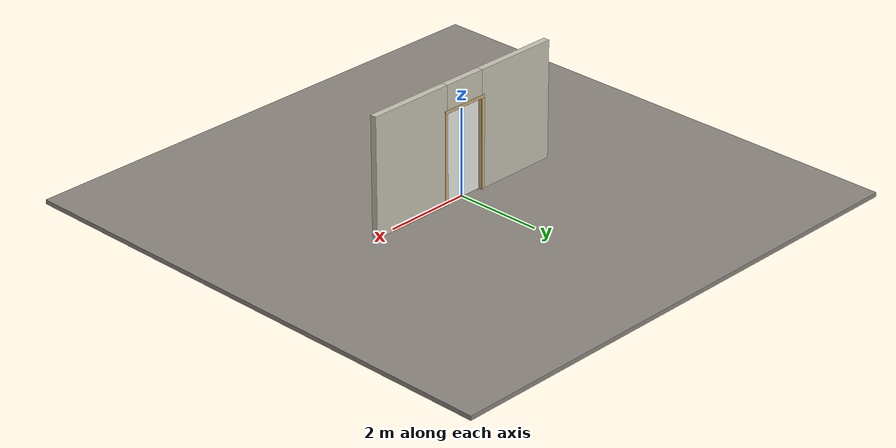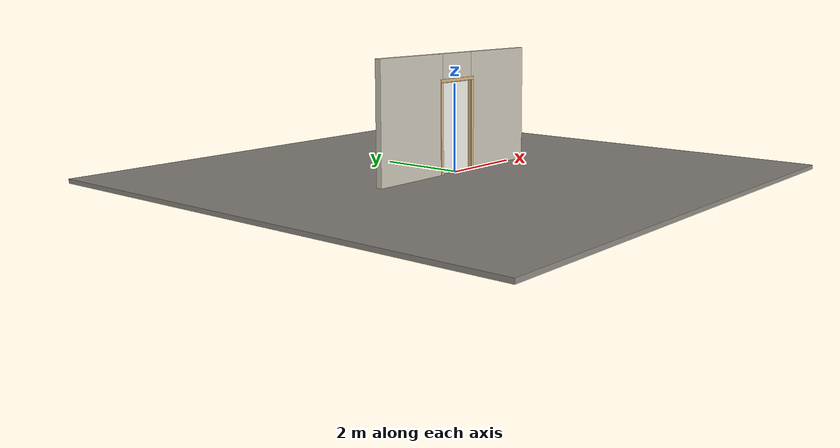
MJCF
<?xml version="1.0" ?>
<mujoco model="db0170_saloon_full">
  <compiler angle="radian" meshdir="../../hardware" texturedir="../../textures" autolimits="true" inertiafromgeom="false"/>
  <option timestep="0.002" integrator="implicitfast" cone="elliptic" impratio="10" noslip_iterations="3">
    <flag multiccd="enable"/>
  </option>
  <size memory="16M"/>
  <default>
    <geom condim="4" solref="0.005 1" solimp="0.95 0.99 0.001"/>
    <joint solreflimit="0.005 1" solimplimit="0.95 0.99 0.001"/>
    <tendon solreflimit="0.005 1"/>
    <equality solref="0.002 1"/>
  </default>
  <visual>
    <headlight ambient="0.4 0.4 0.4" diffuse="0.7 0.7 0.7" specular="0.2 0.2 0.2"/>
    <quality shadowsize="4096"/>
    <map znear="0.01" zfar="60"/>
  </visual>
  <asset>
    <material name="mat_floor" rgba="0.55 0.53 0.5 1" specular="0.2" shininess="0.15" reflectance="0"/>
    <material name="mat_wall" rgba="0.78 0.76 0.7 1" specular="0.2" shininess="0.1" reflectance="0"/>
    <material name="mat_frame" rgba="0.82 0.7 0.5 1" specular="0.2" shininess="0.45" reflectance="0"/>
    <material name="mat_leaf_a" rgba="0.93 0.93 0.91 1" specular="0.2" shininess="0.32" reflectance="0"/>
    <material name="mat_leaf_a_louver" rgba="0.79 0.79 0.773 1" specular="0.2" shininess="0.4" reflectance="0"/>
    <material name="mat_hinge" rgba="0.65 0.66 0.68 1" specular="0.74" shininess="0.5" reflectance="0.36"/>
    <material name="mat_leaf_b" rgba="0.93 0.93 0.91 1" specular="0.2" shininess="0.32" reflectance="0"/>
    <material name="mat_leaf_b_louver" rgba="0.79 0.79 0.773 1" specular="0.2" shininess="0.4" reflectance="0"/>
    <texture name="skybox" type="skybox" builtin="gradient" rgb1="0.6 0.7 0.85" rgb2="0.9 0.92 0.95" width="256" height="256"/>
  </asset>
  <worldbody>
    <light name="sun" pos="1.5 -2.5 4" dir="-0.3 0.5 -0.8" directional="true" diffuse="0.8 0.8 0.8" specular="0.3 0.3 0.3" castshadow="true"/>
    <light name="fill" pos="-1.5 2.5 3" dir="0.3 -0.5 -0.7" directional="true" diffuse="0.35 0.35 0.4" castshadow="false"/>
    <camera name="robot_view" pos="0 -2.554375 1.744225" xyaxes="1 0 0 0 0.26963 0.962964" fovy="52"/>
    <camera name="far_view" pos="0 2.554375 1.744225" xyaxes="-1 0 0 0 -0.26963 0.962964" fovy="52"/>
    <camera name="iso" pos="1.941325 -2.145675 2.152925" xyaxes="0.741536 0.670913 0 -0.242917 0.268487 0.932151" fovy="46"/>
    <camera name="detail_handle" pos="0.48 -0.8 1.28" xyaxes="0.97561 0.219512 0 -0.070934 0.315262 0.94635" fovy="38"/>
    <geom name="floor" type="box" size="6 6 0.05" pos="0 0 -0.05" material="mat_floor" group="0" contype="1" conaffinity="1" friction="0.8 0.005 0.0001" density="2400"/>
    <geom name="wall_left" type="box" size="0.9985 0.0725 1.35" pos="-1.5015 0 1.35" material="mat_wall" group="0" contype="1" conaffinity="1" friction="0.6 0.005 0.0001" density="800"/>
    <geom name="wall_right" type="box" size="0.9985 0.0725 1.35" pos="1.5015 0 1.35" material="mat_wall" group="0" contype="1" conaffinity="1" friction="0.6 0.005 0.0001" density="800"/>
    <geom name="wall_header" type="box" size="0.503 0.0725 0.3115" pos="0 0 2.3885" material="mat_wall" group="0" contype="1" conaffinity="1" friction="0.6 0.005 0.0001" density="800"/>
    <geom name="jamb_hinge" type="box" size="0.0095 0.0725 1.029" pos="-0.4935 0 1.029" material="mat_frame" group="0" contype="1" conaffinity="1" friction="0.6 0.005 0.0001" density="400"/>
    <geom name="jamb_strike" type="box" size="0.0095 0.0725 1.029" pos="0.4935 0 1.029" material="mat_frame" group="0" contype="1" conaffinity="1" friction="0.6 0.005 0.0001" density="400"/>
    <geom name="stud_strike" type="box" size="0.015 0.0725 1.029" pos="0.518 0 1.029" material="mat_wall" group="0" contype="1" conaffinity="1" friction="0.6 0.005 0.0001" density="500"/>
    <geom name="jamb_head" type="box" size="0.518 0.0725 0.0095" pos="0.015 0 2.0675" material="mat_frame" group="0" contype="1" conaffinity="1" friction="0.6 0.005 0.0001" density="400"/>
    <geom name="head_stud" type="box" size="0.518 0.0725 0.015" pos="0.015 0 2.092" material="mat_wall" group="0" contype="1" conaffinity="1" friction="0.6 0.005 0.0001" density="500"/>
    <geom name="casing_l_n" type="box" size="0.035 0.008 1.0385" pos="-0.533 -0.0805 1.029" material="mat_frame" group="2" contype="0" conaffinity="0" density="400"/>
    <geom name="casing_r_n" type="box" size="0.035 0.008 1.0385" pos="0.533 -0.0805 1.029" material="mat_frame" group="2" contype="0" conaffinity="0" density="400"/>
    <geom name="casing_h_n" type="box" size="0.568 0.008 0.035" pos="0 -0.0805 2.107" material="mat_frame" group="2" contype="0" conaffinity="0" density="400"/>
    <geom name="casing_l_p" type="box" size="0.035 0.008 1.0385" pos="-0.533 0.0805 1.029" material="mat_frame" group="2" contype="0" conaffinity="0" density="400"/>
    <geom name="casing_r_p" type="box" size="0.035 0.008 1.0385" pos="0.533 0.0805 1.029" material="mat_frame" group="2" contype="0" conaffinity="0" density="400"/>
    <geom name="casing_h_p" type="box" size="0.568 0.008 0.035" pos="0 0.0805 2.107" material="mat_frame" group="2" contype="0" conaffinity="0" density="400"/>
    <geom name="pivot_bottom_socket" type="box" size="0.035 0.035 0.0115" pos="-0.456 0 0.0015" material="mat_hinge" group="1" contype="0" conaffinity="0" density="7850"/>
    <geom name="pivot_top_bracket" type="box" size="0.035 0.035 0.0025" pos="-0.456 0 2.0555" material="mat_hinge" group="1" contype="0" conaffinity="0" density="7850"/>
    <geom name="pivot_bottom_socket_2" type="box" size="0.035 0.035 0.0115" pos="0.456 0 0.0015" material="mat_hinge" group="1" contype="0" conaffinity="0" density="7850"/>
    <geom name="pivot_top_bracket_2" type="box" size="0.035 0.035 0.0025" pos="0.456 0 2.0555" material="mat_hinge" group="1" contype="0" conaffinity="0" density="7850"/>
    <site name="approach_point" pos="0 -1.5 0" quat="1 0 0 0" size="0.05" rgba="0.2 0.9 0.2 0.5" group="4"/>
    <site name="goal_point" pos="0 1.5 0" quat="1 0 0 0" size="0.05" rgba="0.2 0.9 0.2 0.5" group="4"/>
    <site name="door_plane_center" pos="0 0 1.029" quat="1 0 0 0" size="0.02" rgba="0.2 0.9 0.2 0.5" group="4"/>
    <body name="leaf_a" pos="-0.484 0 0">
      <inertial pos="0.25105 0 1.030009" mass="9.11768" quat="0.500001 -0.500001 -0.499999 -0.499999" diaginertia="0.157938073 3.187363326 3.342377517"/>
      <joint name="leaf_a_hinge" type="hinge" axis="0 0 1" pos="0.028 0 0" limited="true" range="-1.570796 1.570796" damping="0.765034" frictionloss="0.209264" stiffness="4" springref="0" armature="0.02"/>
      <geom name="leaf_a_slab" type="box" size="0.225 0.022 1.015" pos="0.253 0 1.03" material="mat_leaf_a" group="0" contype="1" conaffinity="1" friction="0.35 0.005 0.0001" density="1"/>
      <geom name="leaf_a_louver_0" type="box" size="0.135 0.002 0.02633" pos="0.253 0 0.263376" quat="0.953717 0.300706 0 0" material="mat_leaf_a_louver" group="1" contype="0" conaffinity="0" density="1"/>
      <geom name="leaf_a_louver_1" type="box" size="0.135 0.002 0.02633" pos="0.253 0 0.313529" quat="0.953717 0.300706 0 0" material="mat_leaf_a_louver" group="1" contype="0" conaffinity="0" density="1"/>
      <geom name="leaf_a_louver_2" type="box" size="0.135 0.002 0.02633" pos="0.253 0 0.363682" quat="0.953717 0.300706 0 0" material="mat_leaf_a_louver" group="1" contype="0" conaffinity="0" density="1"/>
      <geom name="leaf_a_louver_3" type="box" size="0.135 0.002 0.02633" pos="0.253 0 0.413835" quat="0.953717 0.300706 0 0" material="mat_leaf_a_louver" group="1" contype="0" conaffinity="0" density="1"/>
      <geom name="leaf_a_louver_4" type="box" size="0.135 0.002 0.02633" pos="0.253 0 0.463988" quat="0.953717 0.300706 0 0" material="mat_leaf_a_louver" group="1" contype="0" conaffinity="0" density="1"/>
      <geom name="leaf_a_louver_5" type="box" size="0.135 0.002 0.02633" pos="0.253 0 0.514141" quat="0.953717 0.300706 0 0" material="mat_leaf_a_louver" group="1" contype="0" conaffinity="0" density="1"/>
      <geom name="leaf_a_louver_6" type="box" size="0.135 0.002 0.02633" pos="0.253 0 0.564294" quat="0.953717 0.300706 0 0" material="mat_leaf_a_louver" group="1" contype="0" conaffinity="0" density="1"/>
      <geom name="leaf_a_louver_7" type="box" size="0.135 0.002 0.02633" pos="0.253 0 0.614447" quat="0.953717 0.300706 0 0" material="mat_leaf_a_louver" group="1" contype="0" conaffinity="0" density="1"/>
      <geom name="leaf_a_louver_8" type="box" size="0.135 0.002 0.02633" pos="0.253 0 0.6646" quat="0.953717 0.300706 0 0" material="mat_leaf_a_louver" group="1" contype="0" conaffinity="0" density="1"/>
      <geom name="leaf_a_louver_9" type="box" size="0.135 0.002 0.02633" pos="0.253 0 0.714753" quat="0.953717 0.300706 0 0" material="mat_leaf_a_louver" group="1" contype="0" conaffinity="0" density="1"/>
      <geom name="leaf_a_louver_10" type="box" size="0.135 0.002 0.02633" pos="0.253 0 0.764906" quat="0.953717 0.300706 0 0" material="mat_leaf_a_louver" group="1" contype="0" conaffinity="0" density="1"/>
      <geom name="leaf_a_louver_11" type="box" size="0.135 0.002 0.02633" pos="0.253 0 0.815059" quat="0.953717 0.300706 0 0" material="mat_leaf_a_louver" group="1" contype="0" conaffinity="0" density="1"/>
      <geom name="leaf_a_louver_12" type="box" size="0.135 0.002 0.02633" pos="0.253 0 0.865212" quat="0.953717 0.300706 0 0" material="mat_leaf_a_louver" group="1" contype="0" conaffinity="0" density="1"/>
      <geom name="leaf_a_louver_13" type="box" size="0.135 0.002 0.02633" pos="0.253 0 0.915365" quat="0.953717 0.300706 0 0" material="mat_leaf_a_louver" group="1" contype="0" conaffinity="0" density="1"/>
      <geom name="leaf_a_louver_14" type="box" size="0.135 0.002 0.02633" pos="0.253 0 0.965518" quat="0.953717 0.300706 0 0" material="mat_leaf_a_louver" group="1" contype="0" conaffinity="0" density="1"/>
      <geom name="leaf_a_louver_15" type="box" size="0.135 0.002 0.02633" pos="0.253 0 1.015671" quat="0.953717 0.300706 0 0" material="mat_leaf_a_louver" group="1" contype="0" conaffinity="0" density="1"/>
      <geom name="leaf_a_louver_16" type="box" size="0.135 0.002 0.02633" pos="0.253 0 1.065824" quat="0.953717 0.300706 0 0" material="mat_leaf_a_louver" group="1" contype="0" conaffinity="0" density="1"/>
      <geom name="leaf_a_louver_17" type="box" size="0.135 0.002 0.02633" pos="0.253 0 1.115976" quat="0.953717 0.300706 0 0" material="mat_leaf_a_louver" group="1" contype="0" conaffinity="0" density="1"/>
      <geom name="leaf_a_louver_18" type="box" size="0.135 0.002 0.02633" pos="0.253 0 1.166129" quat="0.953717 0.300706 0 0" material="mat_leaf_a_louver" group="1" contype="0" conaffinity="0" density="1"/>
      <geom name="leaf_a_louver_19" type="box" size="0.135 0.002 0.02633" pos="0.253 0 1.216282" quat="0.953717 0.300706 0 0" material="mat_leaf_a_louver" group="1" contype="0" conaffinity="0" density="1"/>
      <geom name="leaf_a_louver_20" type="box" size="0.135 0.002 0.02633" pos="0.253 0 1.266435" quat="0.953717 0.300706 0 0" material="mat_leaf_a_louver" group="1" contype="0" conaffinity="0" density="1"/>
      <geom name="leaf_a_louver_21" type="box" size="0.135 0.002 0.02633" pos="0.253 0 1.316588" quat="0.953717 0.300706 0 0" material="mat_leaf_a_louver" group="1" contype="0" conaffinity="0" density="1"/>
      <geom name="leaf_a_louver_22" type="box" size="0.135 0.002 0.02633" pos="0.253 0 1.366741" quat="0.953717 0.300706 0 0" material="mat_leaf_a_louver" group="1" contype="0" conaffinity="0" density="1"/>
      <geom name="leaf_a_louver_23" type="box" size="0.135 0.002 0.02633" pos="0.253 0 1.416894" quat="0.953717 0.300706 0 0" material="mat_leaf_a_louver" group="1" contype="0" conaffinity="0" density="1"/>
      <geom name="leaf_a_louver_24" type="box" size="0.135 0.002 0.02633" pos="0.253 0 1.467047" quat="0.953717 0.300706 0 0" material="mat_leaf_a_louver" group="1" contype="0" conaffinity="0" density="1"/>
      <geom name="leaf_a_louver_25" type="box" size="0.135 0.002 0.02633" pos="0.253 0 1.5172" quat="0.953717 0.300706 0 0" material="mat_leaf_a_louver" group="1" contype="0" conaffinity="0" density="1"/>
      <geom name="leaf_a_louver_26" type="box" size="0.135 0.002 0.02633" pos="0.253 0 1.567353" quat="0.953717 0.300706 0 0" material="mat_leaf_a_louver" group="1" contype="0" conaffinity="0" density="1"/>
      <geom name="leaf_a_louver_27" type="box" size="0.135 0.002 0.02633" pos="0.253 0 1.617506" quat="0.953717 0.300706 0 0" material="mat_leaf_a_louver" group="1" contype="0" conaffinity="0" density="1"/>
      <geom name="leaf_a_louver_28" type="box" size="0.135 0.002 0.02633" pos="0.253 0 1.667659" quat="0.953717 0.300706 0 0" material="mat_leaf_a_louver" group="1" contype="0" conaffinity="0" density="1"/>
      <geom name="leaf_a_louver_29" type="box" size="0.135 0.002 0.02633" pos="0.253 0 1.717812" quat="0.953717 0.300706 0 0" material="mat_leaf_a_louver" group="1" contype="0" conaffinity="0" density="1"/>
      <geom name="leaf_a_louver_30" type="box" size="0.135 0.002 0.02633" pos="0.253 0 1.767965" quat="0.953717 0.300706 0 0" material="mat_leaf_a_louver" group="1" contype="0" conaffinity="0" density="1"/>
      <geom name="leaf_a_louver_31" type="box" size="0.135 0.002 0.02633" pos="0.253 0 1.818118" quat="0.953717 0.300706 0 0" material="mat_leaf_a_louver" group="1" contype="0" conaffinity="0" density="1"/>
      <geom name="leaf_a_louver_32" type="box" size="0.135 0.002 0.02633" pos="0.253 0 1.868271" quat="0.953717 0.300706 0 0" material="mat_leaf_a_louver" group="1" contype="0" conaffinity="0" density="1"/>
      <geom name="leaf_a_louver_33" type="box" size="0.135 0.002 0.02633" pos="0.253 0 1.918424" quat="0.953717 0.300706 0 0" material="mat_leaf_a_louver" group="1" contype="0" conaffinity="0" density="1"/>
      <geom name="pivot_bottom" type="cylinder" size="0.014 0.004" pos="0.028 0 0.01" material="mat_hinge" group="1" contype="0" conaffinity="0" density="7850"/>
      <geom name="pivot_top" type="cylinder" size="0.014 0.004" pos="0.028 0 2.049" material="mat_hinge" group="1" contype="0" conaffinity="0" density="7850"/>
      <site name="leaf_a_push_site" pos="0.3655 -0.022 1.233" quat="1 0 0 0" size="0.015" rgba="0.2 0.9 0.2 0.5" group="4"/>
    </body>
    <body name="leaf_b" pos="0.484 0 0">
      <inertial pos="-0.25105 0 1.030009" mass="9.11768" quat="0.500001 0.500001 0.499999 -0.499999" diaginertia="0.157938073 3.187363326 3.342377517"/>
      <joint name="leaf_b_hinge" type="hinge" axis="0 0 -1" pos="-0.028 0 0" limited="true" range="-1.570796 1.570796" damping="0.765034" frictionloss="0.209264" stiffness="4" springref="0" armature="0.02"/>
      <geom name="leaf_b_slab" type="box" size="0.225 0.022 1.015" pos="-0.253 0 1.03" material="mat_leaf_b" group="0" contype="1" conaffinity="1" friction="0.35 0.005 0.0001" density="1"/>
      <geom name="leaf_b_louver_0" type="box" size="0.135 0.002 0.02633" pos="-0.253 0 0.263376" quat="0.953717 0.300706 0 0" material="mat_leaf_b_louver" group="1" contype="0" conaffinity="0" density="1"/>
      <geom name="leaf_b_louver_1" type="box" size="0.135 0.002 0.02633" pos="-0.253 0 0.313529" quat="0.953717 0.300706 0 0" material="mat_leaf_b_louver" group="1" contype="0" conaffinity="0" density="1"/>
      <geom name="leaf_b_louver_2" type="box" size="0.135 0.002 0.02633" pos="-0.253 0 0.363682" quat="0.953717 0.300706 0 0" material="mat_leaf_b_louver" group="1" contype="0" conaffinity="0" density="1"/>
      <geom name="leaf_b_louver_3" type="box" size="0.135 0.002 0.02633" pos="-0.253 0 0.413835" quat="0.953717 0.300706 0 0" material="mat_leaf_b_louver" group="1" contype="0" conaffinity="0" density="1"/>
      <geom name="leaf_b_louver_4" type="box" size="0.135 0.002 0.02633" pos="-0.253 0 0.463988" quat="0.953717 0.300706 0 0" material="mat_leaf_b_louver" group="1" contype="0" conaffinity="0" density="1"/>
      <geom name="leaf_b_louver_5" type="box" size="0.135 0.002 0.02633" pos="-0.253 0 0.514141" quat="0.953717 0.300706 0 0" material="mat_leaf_b_louver" group="1" contype="0" conaffinity="0" density="1"/>
      <geom name="leaf_b_louver_6" type="box" size="0.135 0.002 0.02633" pos="-0.253 0 0.564294" quat="0.953717 0.300706 0 0" material="mat_leaf_b_louver" group="1" contype="0" conaffinity="0" density="1"/>
      <geom name="leaf_b_louver_7" type="box" size="0.135 0.002 0.02633" pos="-0.253 0 0.614447" quat="0.953717 0.300706 0 0" material="mat_leaf_b_louver" group="1" contype="0" conaffinity="0" density="1"/>
      <geom name="leaf_b_louver_8" type="box" size="0.135 0.002 0.02633" pos="-0.253 0 0.6646" quat="0.953717 0.300706 0 0" material="mat_leaf_b_louver" group="1" contype="0" conaffinity="0" density="1"/>
      <geom name="leaf_b_louver_9" type="box" size="0.135 0.002 0.02633" pos="-0.253 0 0.714753" quat="0.953717 0.300706 0 0" material="mat_leaf_b_louver" group="1" contype="0" conaffinity="0" density="1"/>
      <geom name="leaf_b_louver_10" type="box" size="0.135 0.002 0.02633" pos="-0.253 0 0.764906" quat="0.953717 0.300706 0 0" material="mat_leaf_b_louver" group="1" contype="0" conaffinity="0" density="1"/>
      <geom name="leaf_b_louver_11" type="box" size="0.135 0.002 0.02633" pos="-0.253 0 0.815059" quat="0.953717 0.300706 0 0" material="mat_leaf_b_louver" group="1" contype="0" conaffinity="0" density="1"/>
      <geom name="leaf_b_louver_12" type="box" size="0.135 0.002 0.02633" pos="-0.253 0 0.865212" quat="0.953717 0.300706 0 0" material="mat_leaf_b_louver" group="1" contype="0" conaffinity="0" density="1"/>
      <geom name="leaf_b_louver_13" type="box" size="0.135 0.002 0.02633" pos="-0.253 0 0.915365" quat="0.953717 0.300706 0 0" material="mat_leaf_b_louver" group="1" contype="0" conaffinity="0" density="1"/>
      <geom name="leaf_b_louver_14" type="box" size="0.135 0.002 0.02633" pos="-0.253 0 0.965518" quat="0.953717 0.300706 0 0" material="mat_leaf_b_louver" group="1" contype="0" conaffinity="0" density="1"/>
      <geom name="leaf_b_louver_15" type="box" size="0.135 0.002 0.02633" pos="-0.253 0 1.015671" quat="0.953717 0.300706 0 0" material="mat_leaf_b_louver" group="1" contype="0" conaffinity="0" density="1"/>
      <geom name="leaf_b_louver_16" type="box" size="0.135 0.002 0.02633" pos="-0.253 0 1.065824" quat="0.953717 0.300706 0 0" material="mat_leaf_b_louver" group="1" contype="0" conaffinity="0" density="1"/>
      <geom name="leaf_b_louver_17" type="box" size="0.135 0.002 0.02633" pos="-0.253 0 1.115976" quat="0.953717 0.300706 0 0" material="mat_leaf_b_louver" group="1" contype="0" conaffinity="0" density="1"/>
      <geom name="leaf_b_louver_18" type="box" size="0.135 0.002 0.02633" pos="-0.253 0 1.166129" quat="0.953717 0.300706 0 0" material="mat_leaf_b_louver" group="1" contype="0" conaffinity="0" density="1"/>
      <geom name="leaf_b_louver_19" type="box" size="0.135 0.002 0.02633" pos="-0.253 0 1.216282" quat="0.953717 0.300706 0 0" material="mat_leaf_b_louver" group="1" contype="0" conaffinity="0" density="1"/>
      <geom name="leaf_b_louver_20" type="box" size="0.135 0.002 0.02633" pos="-0.253 0 1.266435" quat="0.953717 0.300706 0 0" material="mat_leaf_b_louver" group="1" contype="0" conaffinity="0" density="1"/>
      <geom name="leaf_b_louver_21" type="box" size="0.135 0.002 0.02633" pos="-0.253 0 1.316588" quat="0.953717 0.300706 0 0" material="mat_leaf_b_louver" group="1" contype="0" conaffinity="0" density="1"/>
      <geom name="leaf_b_louver_22" type="box" size="0.135 0.002 0.02633" pos="-0.253 0 1.366741" quat="0.953717 0.300706 0 0" material="mat_leaf_b_louver" group="1" contype="0" conaffinity="0" density="1"/>
      <geom name="leaf_b_louver_23" type="box" size="0.135 0.002 0.02633" pos="-0.253 0 1.416894" quat="0.953717 0.300706 0 0" material="mat_leaf_b_louver" group="1" contype="0" conaffinity="0" density="1"/>
      <geom name="leaf_b_louver_24" type="box" size="0.135 0.002 0.02633" pos="-0.253 0 1.467047" quat="0.953717 0.300706 0 0" material="mat_leaf_b_louver" group="1" contype="0" conaffinity="0" density="1"/>
      <geom name="leaf_b_louver_25" type="box" size="0.135 0.002 0.02633" pos="-0.253 0 1.5172" quat="0.953717 0.300706 0 0" material="mat_leaf_b_louver" group="1" contype="0" conaffinity="0" density="1"/>
      <geom name="leaf_b_louver_26" type="box" size="0.135 0.002 0.02633" pos="-0.253 0 1.567353" quat="0.953717 0.300706 0 0" material="mat_leaf_b_louver" group="1" contype="0" conaffinity="0" density="1"/>
      <geom name="leaf_b_louver_27" type="box" size="0.135 0.002 0.02633" pos="-0.253 0 1.617506" quat="0.953717 0.300706 0 0" material="mat_leaf_b_louver" group="1" contype="0" conaffinity="0" density="1"/>
      <geom name="leaf_b_louver_28" type="box" size="0.135 0.002 0.02633" pos="-0.253 0 1.667659" quat="0.953717 0.300706 0 0" material="mat_leaf_b_louver" group="1" contype="0" conaffinity="0" density="1"/>
      <geom name="leaf_b_louver_29" type="box" size="0.135 0.002 0.02633" pos="-0.253 0 1.717812" quat="0.953717 0.300706 0 0" material="mat_leaf_b_louver" group="1" contype="0" conaffinity="0" density="1"/>
      <geom name="leaf_b_louver_30" type="box" size="0.135 0.002 0.02633" pos="-0.253 0 1.767965" quat="0.953717 0.300706 0 0" material="mat_leaf_b_louver" group="1" contype="0" conaffinity="0" density="1"/>
      <geom name="leaf_b_louver_31" type="box" size="0.135 0.002 0.02633" pos="-0.253 0 1.818118" quat="0.953717 0.300706 0 0" material="mat_leaf_b_louver" group="1" contype="0" conaffinity="0" density="1"/>
      <geom name="leaf_b_louver_32" type="box" size="0.135 0.002 0.02633" pos="-0.253 0 1.868271" quat="0.953717 0.300706 0 0" material="mat_leaf_b_louver" group="1" contype="0" conaffinity="0" density="1"/>
      <geom name="leaf_b_louver_33" type="box" size="0.135 0.002 0.02633" pos="-0.253 0 1.918424" quat="0.953717 0.300706 0 0" material="mat_leaf_b_louver" group="1" contype="0" conaffinity="0" density="1"/>
      <geom name="pivot_bottom_2" type="cylinder" size="0.014 0.004" pos="-0.028 0 0.01" material="mat_hinge" group="1" contype="0" conaffinity="0" density="7850"/>
      <geom name="pivot_top_2" type="cylinder" size="0.014 0.004" pos="-0.028 0 2.049" material="mat_hinge" group="1" contype="0" conaffinity="0" density="7850"/>
      <site name="leaf_b_push_site" pos="-0.3655 -0.022 1.233" quat="1 0 0 0" size="0.015" rgba="0.2 0.9 0.2 0.5" group="4"/>
    </body>
  </worldbody>
  <sensor>
    <jointpos name="leaf_a_hinge_pos" joint="leaf_a_hinge"/>
    <jointvel name="leaf_a_hinge_vel" joint="leaf_a_hinge"/>
    <jointpos name="leaf_b_hinge_pos" joint="leaf_b_hinge"/>
    <jointvel name="leaf_b_hinge_vel" joint="leaf_b_hinge"/>
  </sensor>
</mujoco>
